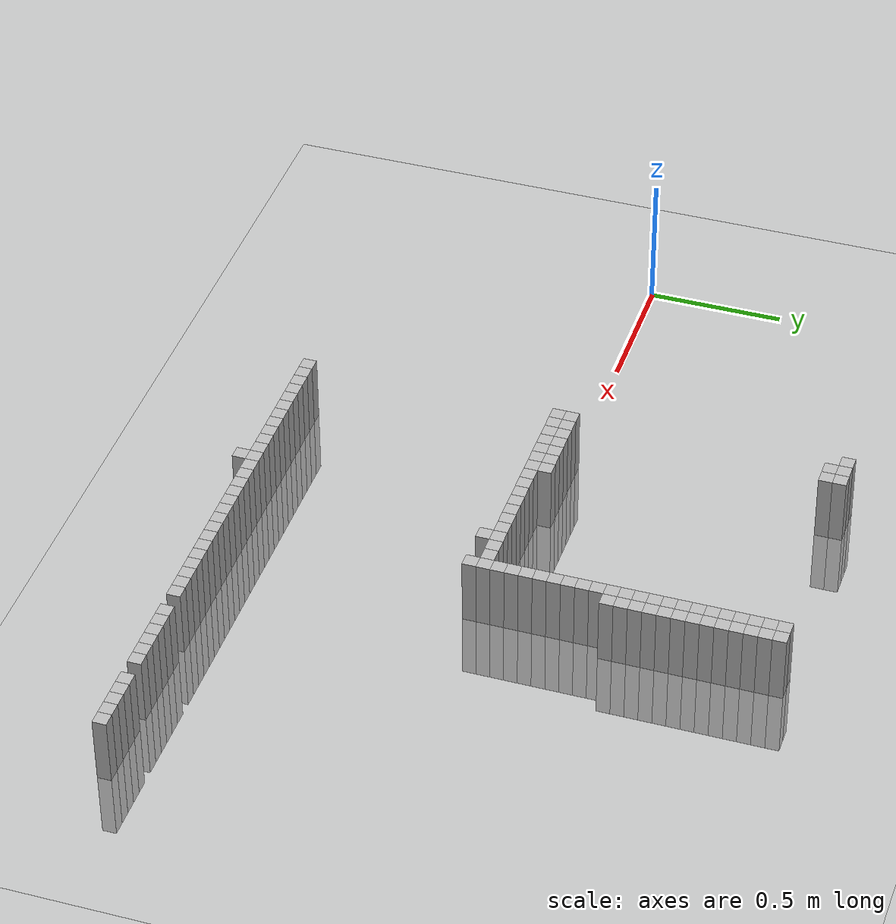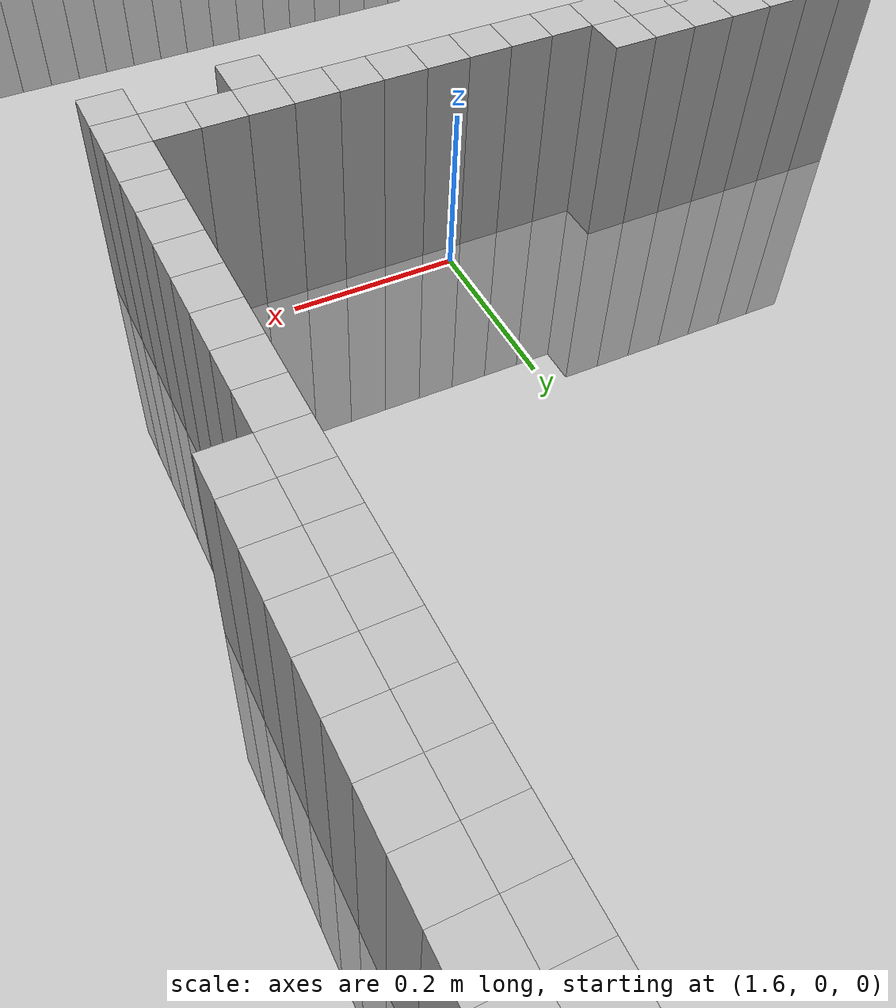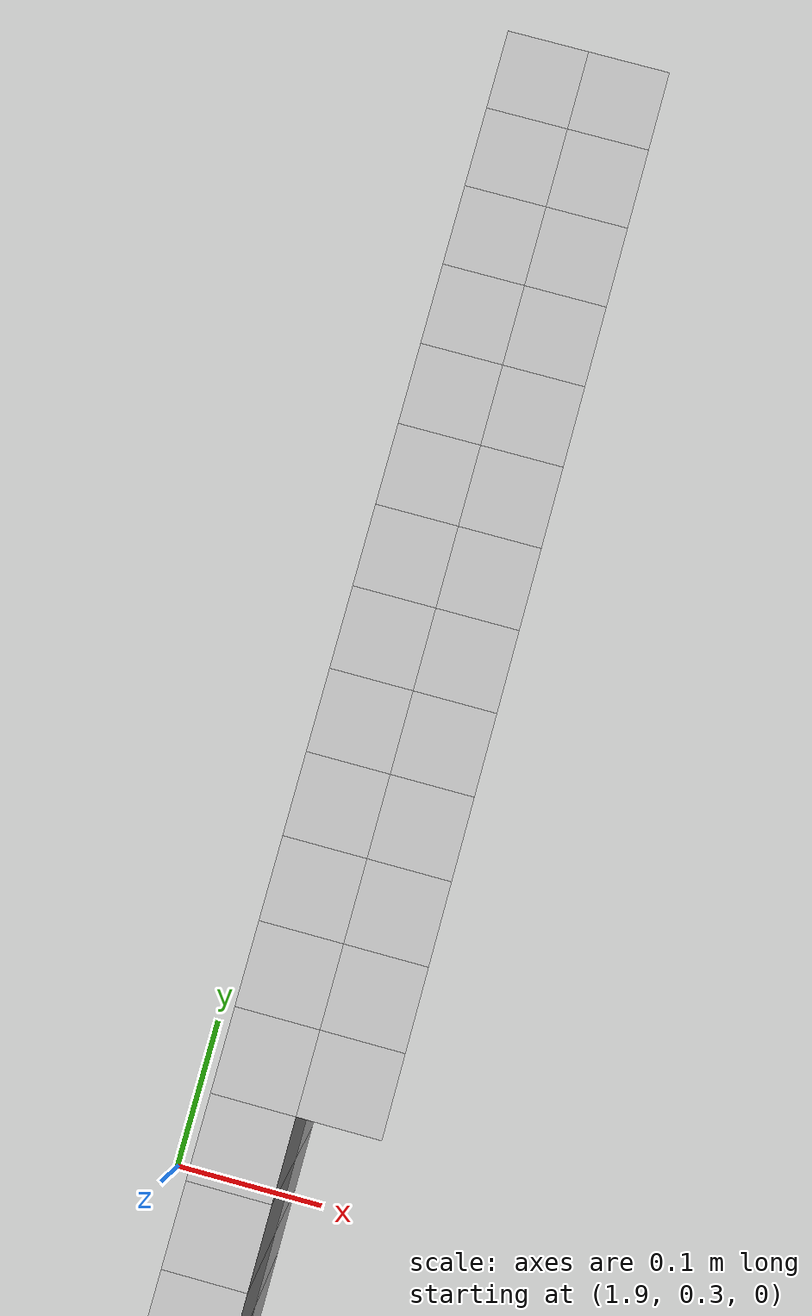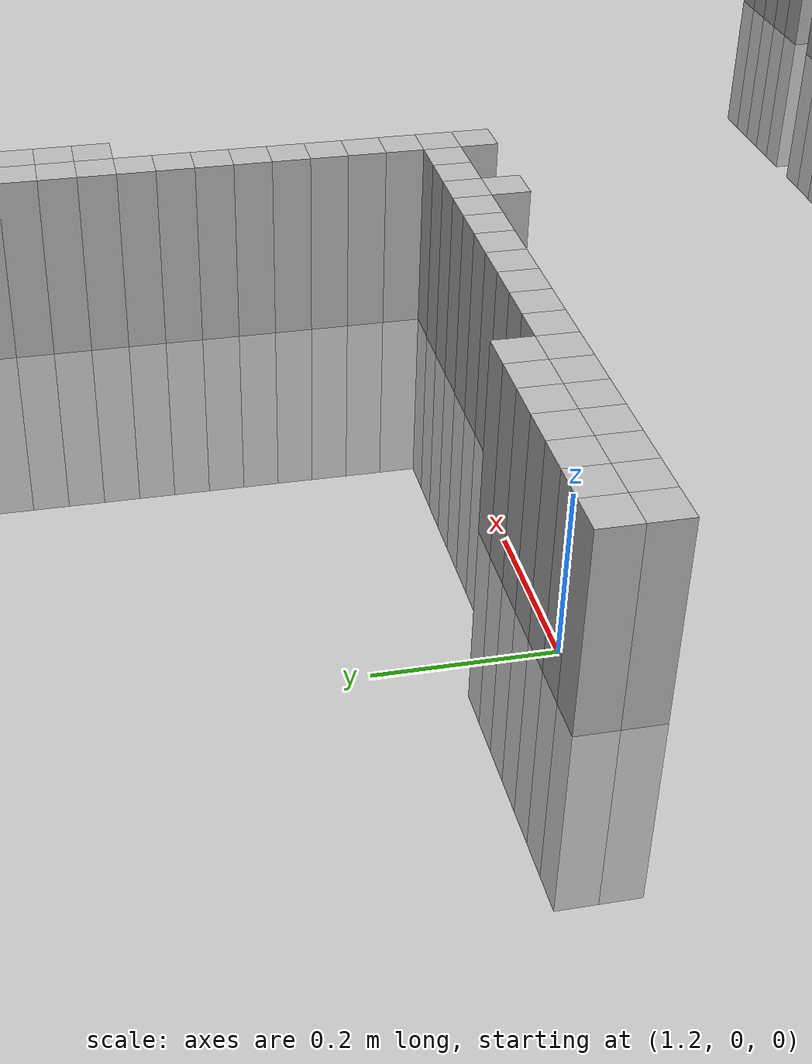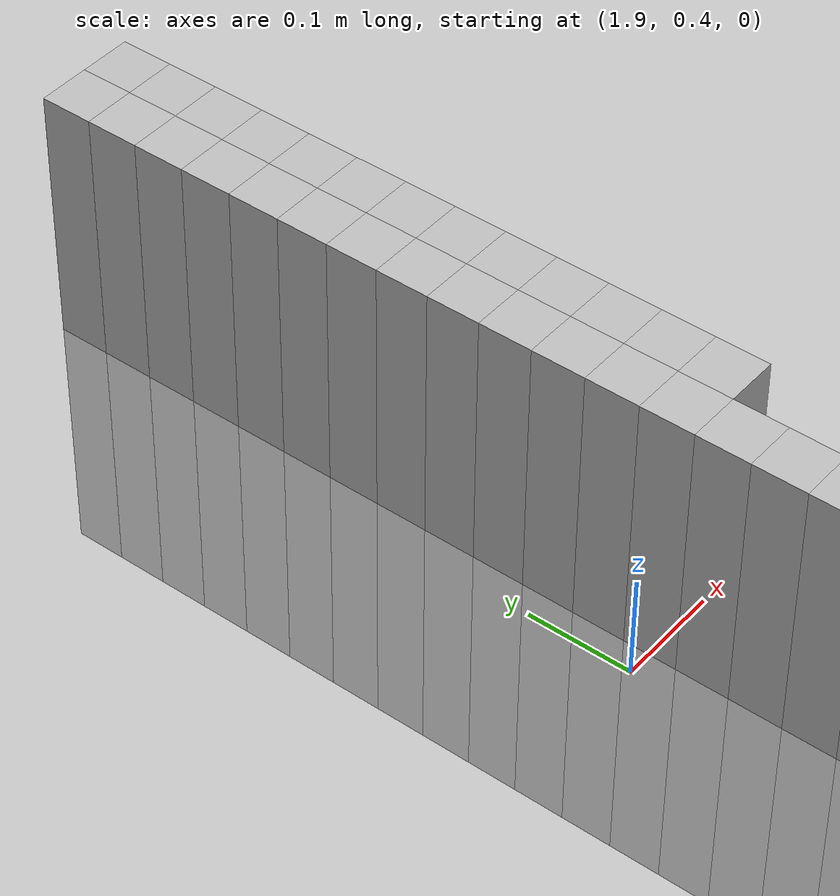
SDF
<sdf version="1.6">
 <world name="my_exploration_world">
  <include><uri>model://ground_plane</uri></include>
  <include><uri>model://sun</uri></include>
  <model name="obstacle_5">
   <pose>1.650000173598528 -1.0499998666346073 0 0 0 0</pose>
   <link name="link">
    <collision name="collision">
     <geometry><box><size>0.05000000074505806 0.05000000074505806 0.5</size></box></geometry>
    </collision>
    <visual name="visual">
     <geometry><box><size>0.05000000074505806 0.05000000074505806 0.5</size></box></geometry>
    </visual>
   </link>
   <static>true</static>
  </model>
  <model name="obstacle_47">
   <pose>1.1000001654028893 -0.9999998658895493 0 0 0 0</pose>
   <link name="link">
    <collision name="collision">
     <geometry><box><size>0.05000000074505806 0.05000000074505806 0.5</size></box></geometry>
    </collision>
    <visual name="visual">
     <geometry><box><size>0.05000000074505806 0.05000000074505806 0.5</size></box></geometry>
    </visual>
   </link>
   <static>true</static>
  </model>
  <model name="obstacle_48">
   <pose>1.1500001661479473 -0.9999998658895493 0 0 0 0</pose>
   <link name="link">
    <collision name="collision">
     <geometry><box><size>0.05000000074505806 0.05000000074505806 0.5</size></box></geometry>
    </collision>
    <visual name="visual">
     <geometry><box><size>0.05000000074505806 0.05000000074505806 0.5</size></box></geometry>
    </visual>
   </link>
   <static>true</static>
  </model>
  <model name="obstacle_49">
   <pose>1.2000001668930054 -0.9999998658895493 0 0 0 0</pose>
   <link name="link">
    <collision name="collision">
     <geometry><box><size>0.05000000074505806 0.05000000074505806 0.5</size></box></geometry>
    </collision>
    <visual name="visual">
     <geometry><box><size>0.05000000074505806 0.05000000074505806 0.5</size></box></geometry>
    </visual>
   </link>
   <static>true</static>
  </model>
  <model name="obstacle_50">
   <pose>1.2500001676380634 -0.9999998658895493 0 0 0 0</pose>
   <link name="link">
    <collision name="collision">
     <geometry><box><size>0.05000000074505806 0.05000000074505806 0.5</size></box></geometry>
    </collision>
    <visual name="visual">
     <geometry><box><size>0.05000000074505806 0.05000000074505806 0.5</size></box></geometry>
    </visual>
   </link>
   <static>true</static>
  </model>
  <model name="obstacle_51">
   <pose>1.3000001683831215 -0.9999998658895493 0 0 0 0</pose>
   <link name="link">
    <collision name="collision">
     <geometry><box><size>0.05000000074505806 0.05000000074505806 0.5</size></box></geometry>
    </collision>
    <visual name="visual">
     <geometry><box><size>0.05000000074505806 0.05000000074505806 0.5</size></box></geometry>
    </visual>
   </link>
   <static>true</static>
  </model>
  <model name="obstacle_52">
   <pose>1.3500001691281796 -0.9999998658895493 0 0 0 0</pose>
   <link name="link">
    <collision name="collision">
     <geometry><box><size>0.05000000074505806 0.05000000074505806 0.5</size></box></geometry>
    </collision>
    <visual name="visual">
     <geometry><box><size>0.05000000074505806 0.05000000074505806 0.5</size></box></geometry>
    </visual>
   </link>
   <static>true</static>
  </model>
  <model name="obstacle_53">
   <pose>1.4000001698732376 -0.9999998658895493 0 0 0 0</pose>
   <link name="link">
    <collision name="collision">
     <geometry><box><size>0.05000000074505806 0.05000000074505806 0.5</size></box></geometry>
    </collision>
    <visual name="visual">
     <geometry><box><size>0.05000000074505806 0.05000000074505806 0.5</size></box></geometry>
    </visual>
   </link>
   <static>true</static>
  </model>
  <model name="obstacle_54">
   <pose>1.4500001706182957 -0.9999998658895493 0 0 0 0</pose>
   <link name="link">
    <collision name="collision">
     <geometry><box><size>0.05000000074505806 0.05000000074505806 0.5</size></box></geometry>
    </collision>
    <visual name="visual">
     <geometry><box><size>0.05000000074505806 0.05000000074505806 0.5</size></box></geometry>
    </visual>
   </link>
   <static>true</static>
  </model>
  <model name="obstacle_55">
   <pose>1.5000001713633537 -0.9999998658895493 0 0 0 0</pose>
   <link name="link">
    <collision name="collision">
     <geometry><box><size>0.05000000074505806 0.05000000074505806 0.5</size></box></geometry>
    </collision>
    <visual name="visual">
     <geometry><box><size>0.05000000074505806 0.05000000074505806 0.5</size></box></geometry>
    </visual>
   </link>
   <static>true</static>
  </model>
  <model name="obstacle_56">
   <pose>1.5500001721084118 -0.9999998658895493 0 0 0 0</pose>
   <link name="link">
    <collision name="collision">
     <geometry><box><size>0.05000000074505806 0.05000000074505806 0.5</size></box></geometry>
    </collision>
    <visual name="visual">
     <geometry><box><size>0.05000000074505806 0.05000000074505806 0.5</size></box></geometry>
    </visual>
   </link>
   <static>true</static>
  </model>
  <model name="obstacle_57">
   <pose>1.6000001728534698 -0.9999998658895493 0 0 0 0</pose>
   <link name="link">
    <collision name="collision">
     <geometry><box><size>0.05000000074505806 0.05000000074505806 0.5</size></box></geometry>
    </collision>
    <visual name="visual">
     <geometry><box><size>0.05000000074505806 0.05000000074505806 0.5</size></box></geometry>
    </visual>
   </link>
   <static>true</static>
  </model>
  <model name="obstacle_58">
   <pose>1.650000173598528 -0.9999998658895493 0 0 0 0</pose>
   <link name="link">
    <collision name="collision">
     <geometry><box><size>0.05000000074505806 0.05000000074505806 0.5</size></box></geometry>
    </collision>
    <visual name="visual">
     <geometry><box><size>0.05000000074505806 0.05000000074505806 0.5</size></box></geometry>
    </visual>
   </link>
   <static>true</static>
  </model>
  <model name="obstacle_59">
   <pose>1.700000174343586 -0.9999998658895493 0 0 0 0</pose>
   <link name="link">
    <collision name="collision">
     <geometry><box><size>0.05000000074505806 0.05000000074505806 0.5</size></box></geometry>
    </collision>
    <visual name="visual">
     <geometry><box><size>0.05000000074505806 0.05000000074505806 0.5</size></box></geometry>
    </visual>
   </link>
   <static>true</static>
  </model>
  <model name="obstacle_60">
   <pose>1.750000175088644 -0.9999998658895493 0 0 0 0</pose>
   <link name="link">
    <collision name="collision">
     <geometry><box><size>0.05000000074505806 0.05000000074505806 0.5</size></box></geometry>
    </collision>
    <visual name="visual">
     <geometry><box><size>0.05000000074505806 0.05000000074505806 0.5</size></box></geometry>
    </visual>
   </link>
   <static>true</static>
  </model>
  <model name="obstacle_61">
   <pose>1.800000175833702 -0.9999998658895493 0 0 0 0</pose>
   <link name="link">
    <collision name="collision">
     <geometry><box><size>0.05000000074505806 0.05000000074505806 0.5</size></box></geometry>
    </collision>
    <visual name="visual">
     <geometry><box><size>0.05000000074505806 0.05000000074505806 0.5</size></box></geometry>
    </visual>
   </link>
   <static>true</static>
  </model>
  <model name="obstacle_62">
   <pose>1.8500001765787601 -0.9999998658895493 0 0 0 0</pose>
   <link name="link">
    <collision name="collision">
     <geometry><box><size>0.05000000074505806 0.05000000074505806 0.5</size></box></geometry>
    </collision>
    <visual name="visual">
     <geometry><box><size>0.05000000074505806 0.05000000074505806 0.5</size></box></geometry>
    </visual>
   </link>
   <static>true</static>
  </model>
  <model name="obstacle_63">
   <pose>1.9000001773238182 -0.9999998658895493 0 0 0 0</pose>
   <link name="link">
    <collision name="collision">
     <geometry><box><size>0.05000000074505806 0.05000000074505806 0.5</size></box></geometry>
    </collision>
    <visual name="visual">
     <geometry><box><size>0.05000000074505806 0.05000000074505806 0.5</size></box></geometry>
    </visual>
   </link>
   <static>true</static>
  </model>
  <model name="obstacle_64">
   <pose>1.9500001780688763 -0.9999998658895493 0 0 0 0</pose>
   <link name="link">
    <collision name="collision">
     <geometry><box><size>0.05000000074505806 0.05000000074505806 0.5</size></box></geometry>
    </collision>
    <visual name="visual">
     <geometry><box><size>0.05000000074505806 0.05000000074505806 0.5</size></box></geometry>
    </visual>
   </link>
   <static>true</static>
  </model>
  <model name="obstacle_65">
   <pose>2.0000001788139343 -0.9999998658895493 0 0 0 0</pose>
   <link name="link">
    <collision name="collision">
     <geometry><box><size>0.05000000074505806 0.05000000074505806 0.5</size></box></geometry>
    </collision>
    <visual name="visual">
     <geometry><box><size>0.05000000074505806 0.05000000074505806 0.5</size></box></geometry>
    </visual>
   </link>
   <static>true</static>
  </model>
  <model name="obstacle_66">
   <pose>2.0500001795589924 -0.9999998658895493 0 0 0 0</pose>
   <link name="link">
    <collision name="collision">
     <geometry><box><size>0.05000000074505806 0.05000000074505806 0.5</size></box></geometry>
    </collision>
    <visual name="visual">
     <geometry><box><size>0.05000000074505806 0.05000000074505806 0.5</size></box></geometry>
    </visual>
   </link>
   <static>true</static>
  </model>
  <model name="obstacle_67">
   <pose>2.1000001803040504 -0.9999998658895493 0 0 0 0</pose>
   <link name="link">
    <collision name="collision">
     <geometry><box><size>0.05000000074505806 0.05000000074505806 0.5</size></box></geometry>
    </collision>
    <visual name="visual">
     <geometry><box><size>0.05000000074505806 0.05000000074505806 0.5</size></box></geometry>
    </visual>
   </link>
   <static>true</static>
  </model>
  <model name="obstacle_68">
   <pose>2.1500001810491085 -0.9999998658895493 0 0 0 0</pose>
   <link name="link">
    <collision name="collision">
     <geometry><box><size>0.05000000074505806 0.05000000074505806 0.5</size></box></geometry>
    </collision>
    <visual name="visual">
     <geometry><box><size>0.05000000074505806 0.05000000074505806 0.5</size></box></geometry>
    </visual>
   </link>
   <static>true</static>
  </model>
  <model name="obstacle_69">
   <pose>2.2000001817941666 -0.9999998658895493 0 0 0 0</pose>
   <link name="link">
    <collision name="collision">
     <geometry><box><size>0.05000000074505806 0.05000000074505806 0.5</size></box></geometry>
    </collision>
    <visual name="visual">
     <geometry><box><size>0.05000000074505806 0.05000000074505806 0.5</size></box></geometry>
    </visual>
   </link>
   <static>true</static>
  </model>
  <model name="obstacle_70">
   <pose>2.2500001825392246 -0.9999998658895493 0 0 0 0</pose>
   <link name="link">
    <collision name="collision">
     <geometry><box><size>0.05000000074505806 0.05000000074505806 0.5</size></box></geometry>
    </collision>
    <visual name="visual">
     <geometry><box><size>0.05000000074505806 0.05000000074505806 0.5</size></box></geometry>
    </visual>
   </link>
   <static>true</static>
  </model>
  <model name="obstacle_71">
   <pose>2.3000001832842827 -0.9999998658895493 0 0 0 0</pose>
   <link name="link">
    <collision name="collision">
     <geometry><box><size>0.05000000074505806 0.05000000074505806 0.5</size></box></geometry>
    </collision>
    <visual name="visual">
     <geometry><box><size>0.05000000074505806 0.05000000074505806 0.5</size></box></geometry>
    </visual>
   </link>
   <static>true</static>
  </model>
  <model name="obstacle_72">
   <pose>2.3500001840293407 -0.9999998658895493 0 0 0 0</pose>
   <link name="link">
    <collision name="collision">
     <geometry><box><size>0.05000000074505806 0.05000000074505806 0.5</size></box></geometry>
    </collision>
    <visual name="visual">
     <geometry><box><size>0.05000000074505806 0.05000000074505806 0.5</size></box></geometry>
    </visual>
   </link>
   <static>true</static>
  </model>
  <model name="obstacle_73">
   <pose>2.400000184774399 -0.9999998658895493 0 0 0 0</pose>
   <link name="link">
    <collision name="collision">
     <geometry><box><size>0.05000000074505806 0.05000000074505806 0.5</size></box></geometry>
    </collision>
    <visual name="visual">
     <geometry><box><size>0.05000000074505806 0.05000000074505806 0.5</size></box></geometry>
    </visual>
   </link>
   <static>true</static>
  </model>
  <model name="obstacle_74">
   <pose>2.500000186264515 -0.9999998658895493 0 0 0 0</pose>
   <link name="link">
    <collision name="collision">
     <geometry><box><size>0.05000000074505806 0.05000000074505806 0.5</size></box></geometry>
    </collision>
    <visual name="visual">
     <geometry><box><size>0.05000000074505806 0.05000000074505806 0.5</size></box></geometry>
    </visual>
   </link>
   <static>true</static>
  </model>
  <model name="obstacle_75">
   <pose>2.550000187009573 -0.9999998658895493 0 0 0 0</pose>
   <link name="link">
    <collision name="collision">
     <geometry><box><size>0.05000000074505806 0.05000000074505806 0.5</size></box></geometry>
    </collision>
    <visual name="visual">
     <geometry><box><size>0.05000000074505806 0.05000000074505806 0.5</size></box></geometry>
    </visual>
   </link>
   <static>true</static>
  </model>
  <model name="obstacle_76">
   <pose>2.600000187754631 -0.9999998658895493 0 0 0 0</pose>
   <link name="link">
    <collision name="collision">
     <geometry><box><size>0.05000000074505806 0.05000000074505806 0.5</size></box></geometry>
    </collision>
    <visual name="visual">
     <geometry><box><size>0.05000000074505806 0.05000000074505806 0.5</size></box></geometry>
    </visual>
   </link>
   <static>true</static>
  </model>
  <model name="obstacle_77">
   <pose>2.650000188499689 -0.9999998658895493 0 0 0 0</pose>
   <link name="link">
    <collision name="collision">
     <geometry><box><size>0.05000000074505806 0.05000000074505806 0.5</size></box></geometry>
    </collision>
    <visual name="visual">
     <geometry><box><size>0.05000000074505806 0.05000000074505806 0.5</size></box></geometry>
    </visual>
   </link>
   <static>true</static>
  </model>
  <model name="obstacle_78">
   <pose>2.700000189244747 -0.9999998658895493 0 0 0 0</pose>
   <link name="link">
    <collision name="collision">
     <geometry><box><size>0.05000000074505806 0.05000000074505806 0.5</size></box></geometry>
    </collision>
    <visual name="visual">
     <geometry><box><size>0.05000000074505806 0.05000000074505806 0.5</size></box></geometry>
    </visual>
   </link>
   <static>true</static>
  </model>
  <model name="obstacle_79">
   <pose>2.750000189989805 -0.9999998658895493 0 0 0 0</pose>
   <link name="link">
    <collision name="collision">
     <geometry><box><size>0.05000000074505806 0.05000000074505806 0.5</size></box></geometry>
    </collision>
    <visual name="visual">
     <geometry><box><size>0.05000000074505806 0.05000000074505806 0.5</size></box></geometry>
    </visual>
   </link>
   <static>true</static>
  </model>
  <model name="obstacle_80">
   <pose>2.8500001914799213 -0.9999998658895493 0 0 0 0</pose>
   <link name="link">
    <collision name="collision">
     <geometry><box><size>0.05000000074505806 0.05000000074505806 0.5</size></box></geometry>
    </collision>
    <visual name="visual">
     <geometry><box><size>0.05000000074505806 0.05000000074505806 0.5</size></box></geometry>
    </visual>
   </link>
   <static>true</static>
  </model>
  <model name="obstacle_81">
   <pose>2.9000001922249794 -0.9999998658895493 0 0 0 0</pose>
   <link name="link">
    <collision name="collision">
     <geometry><box><size>0.05000000074505806 0.05000000074505806 0.5</size></box></geometry>
    </collision>
    <visual name="visual">
     <geometry><box><size>0.05000000074505806 0.05000000074505806 0.5</size></box></geometry>
    </visual>
   </link>
   <static>true</static>
  </model>
  <model name="obstacle_82">
   <pose>2.9500001929700375 -0.9999998658895493 0 0 0 0</pose>
   <link name="link">
    <collision name="collision">
     <geometry><box><size>0.05000000074505806 0.05000000074505806 0.5</size></box></geometry>
    </collision>
    <visual name="visual">
     <geometry><box><size>0.05000000074505806 0.05000000074505806 0.5</size></box></geometry>
    </visual>
   </link>
   <static>true</static>
  </model>
  <model name="obstacle_83">
   <pose>3.0000001937150955 -0.9999998658895493 0 0 0 0</pose>
   <link name="link">
    <collision name="collision">
     <geometry><box><size>0.05000000074505806 0.05000000074505806 0.5</size></box></geometry>
    </collision>
    <visual name="visual">
     <geometry><box><size>0.05000000074505806 0.05000000074505806 0.5</size></box></geometry>
    </visual>
   </link>
   <static>true</static>
  </model>
  <model name="obstacle_84">
   <pose>3.0500001944601536 -0.9999998658895493 0 0 0 0</pose>
   <link name="link">
    <collision name="collision">
     <geometry><box><size>0.05000000074505806 0.05000000074505806 0.5</size></box></geometry>
    </collision>
    <visual name="visual">
     <geometry><box><size>0.05000000074505806 0.05000000074505806 0.5</size></box></geometry>
    </visual>
   </link>
   <static>true</static>
  </model>
  <model name="obstacle_128">
   <pose>1.800000175833702 -0.09999985247850418 0 0 0 0</pose>
   <link name="link">
    <collision name="collision">
     <geometry><box><size>0.05000000074505806 0.05000000074505806 0.5</size></box></geometry>
    </collision>
    <visual name="visual">
     <geometry><box><size>0.05000000074505806 0.05000000074505806 0.5</size></box></geometry>
    </visual>
   </link>
   <static>true</static>
  </model>
  <model name="obstacle_129">
   <pose>1.9500001780688763 -0.09999985247850418 0 0 0 0</pose>
   <link name="link">
    <collision name="collision">
     <geometry><box><size>0.05000000074505806 0.05000000074505806 0.5</size></box></geometry>
    </collision>
    <visual name="visual">
     <geometry><box><size>0.05000000074505806 0.05000000074505806 0.5</size></box></geometry>
    </visual>
   </link>
   <static>true</static>
  </model>
  <model name="obstacle_134">
   <pose>1.1000001654028893 -0.04999985173344612 0 0 0 0</pose>
   <link name="link">
    <collision name="collision">
     <geometry><box><size>0.05000000074505806 0.05000000074505806 0.5</size></box></geometry>
    </collision>
    <visual name="visual">
     <geometry><box><size>0.05000000074505806 0.05000000074505806 0.5</size></box></geometry>
    </visual>
   </link>
   <static>true</static>
  </model>
  <model name="obstacle_135">
   <pose>1.1500001661479473 -0.04999985173344612 0 0 0 0</pose>
   <link name="link">
    <collision name="collision">
     <geometry><box><size>0.05000000074505806 0.05000000074505806 0.5</size></box></geometry>
    </collision>
    <visual name="visual">
     <geometry><box><size>0.05000000074505806 0.05000000074505806 0.5</size></box></geometry>
    </visual>
   </link>
   <static>true</static>
  </model>
  <model name="obstacle_136">
   <pose>1.2000001668930054 -0.04999985173344612 0 0 0 0</pose>
   <link name="link">
    <collision name="collision">
     <geometry><box><size>0.05000000074505806 0.05000000074505806 0.5</size></box></geometry>
    </collision>
    <visual name="visual">
     <geometry><box><size>0.05000000074505806 0.05000000074505806 0.5</size></box></geometry>
    </visual>
   </link>
   <static>true</static>
  </model>
  <model name="obstacle_137">
   <pose>1.2500001676380634 -0.04999985173344612 0 0 0 0</pose>
   <link name="link">
    <collision name="collision">
     <geometry><box><size>0.05000000074505806 0.05000000074505806 0.5</size></box></geometry>
    </collision>
    <visual name="visual">
     <geometry><box><size>0.05000000074505806 0.05000000074505806 0.5</size></box></geometry>
    </visual>
   </link>
   <static>true</static>
  </model>
  <model name="obstacle_138">
   <pose>1.3000001683831215 -0.04999985173344612 0 0 0 0</pose>
   <link name="link">
    <collision name="collision">
     <geometry><box><size>0.05000000074505806 0.05000000074505806 0.5</size></box></geometry>
    </collision>
    <visual name="visual">
     <geometry><box><size>0.05000000074505806 0.05000000074505806 0.5</size></box></geometry>
    </visual>
   </link>
   <static>true</static>
  </model>
  <model name="obstacle_139">
   <pose>1.3500001691281796 -0.04999985173344612 0 0 0 0</pose>
   <link name="link">
    <collision name="collision">
     <geometry><box><size>0.05000000074505806 0.05000000074505806 0.5</size></box></geometry>
    </collision>
    <visual name="visual">
     <geometry><box><size>0.05000000074505806 0.05000000074505806 0.5</size></box></geometry>
    </visual>
   </link>
   <static>true</static>
  </model>
  <model name="obstacle_140">
   <pose>1.4000001698732376 -0.04999985173344612 0 0 0 0</pose>
   <link name="link">
    <collision name="collision">
     <geometry><box><size>0.05000000074505806 0.05000000074505806 0.5</size></box></geometry>
    </collision>
    <visual name="visual">
     <geometry><box><size>0.05000000074505806 0.05000000074505806 0.5</size></box></geometry>
    </visual>
   </link>
   <static>true</static>
  </model>
  <model name="obstacle_141">
   <pose>1.4500001706182957 -0.04999985173344612 0 0 0 0</pose>
   <link name="link">
    <collision name="collision">
     <geometry><box><size>0.05000000074505806 0.05000000074505806 0.5</size></box></geometry>
    </collision>
    <visual name="visual">
     <geometry><box><size>0.05000000074505806 0.05000000074505806 0.5</size></box></geometry>
    </visual>
   </link>
   <static>true</static>
  </model>
  <model name="obstacle_142">
   <pose>1.5000001713633537 -0.04999985173344612 0 0 0 0</pose>
   <link name="link">
    <collision name="collision">
     <geometry><box><size>0.05000000074505806 0.05000000074505806 0.5</size></box></geometry>
    </collision>
    <visual name="visual">
     <geometry><box><size>0.05000000074505806 0.05000000074505806 0.5</size></box></geometry>
    </visual>
   </link>
   <static>true</static>
  </model>
  <model name="obstacle_143">
   <pose>1.5500001721084118 -0.04999985173344612 0 0 0 0</pose>
   <link name="link">
    <collision name="collision">
     <geometry><box><size>0.05000000074505806 0.05000000074505806 0.5</size></box></geometry>
    </collision>
    <visual name="visual">
     <geometry><box><size>0.05000000074505806 0.05000000074505806 0.5</size></box></geometry>
    </visual>
   </link>
   <static>true</static>
  </model>
  <model name="obstacle_144">
   <pose>1.6000001728534698 -0.04999985173344612 0 0 0 0</pose>
   <link name="link">
    <collision name="collision">
     <geometry><box><size>0.05000000074505806 0.05000000074505806 0.5</size></box></geometry>
    </collision>
    <visual name="visual">
     <geometry><box><size>0.05000000074505806 0.05000000074505806 0.5</size></box></geometry>
    </visual>
   </link>
   <static>true</static>
  </model>
  <model name="obstacle_145">
   <pose>1.650000173598528 -0.04999985173344612 0 0 0 0</pose>
   <link name="link">
    <collision name="collision">
     <geometry><box><size>0.05000000074505806 0.05000000074505806 0.5</size></box></geometry>
    </collision>
    <visual name="visual">
     <geometry><box><size>0.05000000074505806 0.05000000074505806 0.5</size></box></geometry>
    </visual>
   </link>
   <static>true</static>
  </model>
  <model name="obstacle_146">
   <pose>1.700000174343586 -0.04999985173344612 0 0 0 0</pose>
   <link name="link">
    <collision name="collision">
     <geometry><box><size>0.05000000074505806 0.05000000074505806 0.5</size></box></geometry>
    </collision>
    <visual name="visual">
     <geometry><box><size>0.05000000074505806 0.05000000074505806 0.5</size></box></geometry>
    </visual>
   </link>
   <static>true</static>
  </model>
  <model name="obstacle_147">
   <pose>1.750000175088644 -0.04999985173344612 0 0 0 0</pose>
   <link name="link">
    <collision name="collision">
     <geometry><box><size>0.05000000074505806 0.05000000074505806 0.5</size></box></geometry>
    </collision>
    <visual name="visual">
     <geometry><box><size>0.05000000074505806 0.05000000074505806 0.5</size></box></geometry>
    </visual>
   </link>
   <static>true</static>
  </model>
  <model name="obstacle_148">
   <pose>1.800000175833702 -0.04999985173344612 0 0 0 0</pose>
   <link name="link">
    <collision name="collision">
     <geometry><box><size>0.05000000074505806 0.05000000074505806 0.5</size></box></geometry>
    </collision>
    <visual name="visual">
     <geometry><box><size>0.05000000074505806 0.05000000074505806 0.5</size></box></geometry>
    </visual>
   </link>
   <static>true</static>
  </model>
  <model name="obstacle_149">
   <pose>1.8500001765787601 -0.04999985173344612 0 0 0 0</pose>
   <link name="link">
    <collision name="collision">
     <geometry><box><size>0.05000000074505806 0.05000000074505806 0.5</size></box></geometry>
    </collision>
    <visual name="visual">
     <geometry><box><size>0.05000000074505806 0.05000000074505806 0.5</size></box></geometry>
    </visual>
   </link>
   <static>true</static>
  </model>
  <model name="obstacle_150">
   <pose>1.9000001773238182 -0.04999985173344612 0 0 0 0</pose>
   <link name="link">
    <collision name="collision">
     <geometry><box><size>0.05000000074505806 0.05000000074505806 0.5</size></box></geometry>
    </collision>
    <visual name="visual">
     <geometry><box><size>0.05000000074505806 0.05000000074505806 0.5</size></box></geometry>
    </visual>
   </link>
   <static>true</static>
  </model>
  <model name="obstacle_151">
   <pose>1.9500001780688763 -0.04999985173344612 0 0 0 0</pose>
   <link name="link">
    <collision name="collision">
     <geometry><box><size>0.05000000074505806 0.05000000074505806 0.5</size></box></geometry>
    </collision>
    <visual name="visual">
     <geometry><box><size>0.05000000074505806 0.05000000074505806 0.5</size></box></geometry>
    </visual>
   </link>
   <static>true</static>
  </model>
  <model name="obstacle_156">
   <pose>1.1000001654028893 1.4901161193847656e-07 0 0 0 0</pose>
   <link name="link">
    <collision name="collision">
     <geometry><box><size>0.05000000074505806 0.05000000074505806 0.5</size></box></geometry>
    </collision>
    <visual name="visual">
     <geometry><box><size>0.05000000074505806 0.05000000074505806 0.5</size></box></geometry>
    </visual>
   </link>
   <static>true</static>
  </model>
  <model name="obstacle_157">
   <pose>1.1500001661479473 1.4901161193847656e-07 0 0 0 0</pose>
   <link name="link">
    <collision name="collision">
     <geometry><box><size>0.05000000074505806 0.05000000074505806 0.5</size></box></geometry>
    </collision>
    <visual name="visual">
     <geometry><box><size>0.05000000074505806 0.05000000074505806 0.5</size></box></geometry>
    </visual>
   </link>
   <static>true</static>
  </model>
  <model name="obstacle_158">
   <pose>1.2000001668930054 1.4901161193847656e-07 0 0 0 0</pose>
   <link name="link">
    <collision name="collision">
     <geometry><box><size>0.05000000074505806 0.05000000074505806 0.5</size></box></geometry>
    </collision>
    <visual name="visual">
     <geometry><box><size>0.05000000074505806 0.05000000074505806 0.5</size></box></geometry>
    </visual>
   </link>
   <static>true</static>
  </model>
  <model name="obstacle_159">
   <pose>1.2500001676380634 1.4901161193847656e-07 0 0 0 0</pose>
   <link name="link">
    <collision name="collision">
     <geometry><box><size>0.05000000074505806 0.05000000074505806 0.5</size></box></geometry>
    </collision>
    <visual name="visual">
     <geometry><box><size>0.05000000074505806 0.05000000074505806 0.5</size></box></geometry>
    </visual>
   </link>
   <static>true</static>
  </model>
  <model name="obstacle_160">
   <pose>1.3000001683831215 1.4901161193847656e-07 0 0 0 0</pose>
   <link name="link">
    <collision name="collision">
     <geometry><box><size>0.05000000074505806 0.05000000074505806 0.5</size></box></geometry>
    </collision>
    <visual name="visual">
     <geometry><box><size>0.05000000074505806 0.05000000074505806 0.5</size></box></geometry>
    </visual>
   </link>
   <static>true</static>
  </model>
  <model name="obstacle_161">
   <pose>1.3500001691281796 1.4901161193847656e-07 0 0 0 0</pose>
   <link name="link">
    <collision name="collision">
     <geometry><box><size>0.05000000074505806 0.05000000074505806 0.5</size></box></geometry>
    </collision>
    <visual name="visual">
     <geometry><box><size>0.05000000074505806 0.05000000074505806 0.5</size></box></geometry>
    </visual>
   </link>
   <static>true</static>
  </model>
  <model name="obstacle_162">
   <pose>1.4000001698732376 1.4901161193847656e-07 0 0 0 0</pose>
   <link name="link">
    <collision name="collision">
     <geometry><box><size>0.05000000074505806 0.05000000074505806 0.5</size></box></geometry>
    </collision>
    <visual name="visual">
     <geometry><box><size>0.05000000074505806 0.05000000074505806 0.5</size></box></geometry>
    </visual>
   </link>
   <static>true</static>
  </model>
  <model name="obstacle_163">
   <pose>1.9500001780688763 1.4901161193847656e-07 0 0 0 0</pose>
   <link name="link">
    <collision name="collision">
     <geometry><box><size>0.05000000074505806 0.05000000074505806 0.5</size></box></geometry>
    </collision>
    <visual name="visual">
     <geometry><box><size>0.05000000074505806 0.05000000074505806 0.5</size></box></geometry>
    </visual>
   </link>
   <static>true</static>
  </model>
  <model name="obstacle_166">
   <pose>1.9500001780688763 0.05000014975667 0 0 0 0</pose>
   <link name="link">
    <collision name="collision">
     <geometry><box><size>0.05000000074505806 0.05000000074505806 0.5</size></box></geometry>
    </collision>
    <visual name="visual">
     <geometry><box><size>0.05000000074505806 0.05000000074505806 0.5</size></box></geometry>
    </visual>
   </link>
   <static>true</static>
  </model>
  <model name="obstacle_169">
   <pose>1.9500001780688763 0.10000015050172806 0 0 0 0</pose>
   <link name="link">
    <collision name="collision">
     <geometry><box><size>0.05000000074505806 0.05000000074505806 0.5</size></box></geometry>
    </collision>
    <visual name="visual">
     <geometry><box><size>0.05000000074505806 0.05000000074505806 0.5</size></box></geometry>
    </visual>
   </link>
   <static>true</static>
  </model>
  <model name="obstacle_172">
   <pose>1.9500001780688763 0.15000015124678612 0 0 0 0</pose>
   <link name="link">
    <collision name="collision">
     <geometry><box><size>0.05000000074505806 0.05000000074505806 0.5</size></box></geometry>
    </collision>
    <visual name="visual">
     <geometry><box><size>0.05000000074505806 0.05000000074505806 0.5</size></box></geometry>
    </visual>
   </link>
   <static>true</static>
  </model>
  <model name="obstacle_175">
   <pose>1.9500001780688763 0.20000015199184418 0 0 0 0</pose>
   <link name="link">
    <collision name="collision">
     <geometry><box><size>0.05000000074505806 0.05000000074505806 0.5</size></box></geometry>
    </collision>
    <visual name="visual">
     <geometry><box><size>0.05000000074505806 0.05000000074505806 0.5</size></box></geometry>
    </visual>
   </link>
   <static>true</static>
  </model>
  <model name="obstacle_178">
   <pose>1.9500001780688763 0.25000015273690224 0 0 0 0</pose>
   <link name="link">
    <collision name="collision">
     <geometry><box><size>0.05000000074505806 0.05000000074505806 0.5</size></box></geometry>
    </collision>
    <visual name="visual">
     <geometry><box><size>0.05000000074505806 0.05000000074505806 0.5</size></box></geometry>
    </visual>
   </link>
   <static>true</static>
  </model>
  <model name="obstacle_181">
   <pose>1.9500001780688763 0.3000001534819603 0 0 0 0</pose>
   <link name="link">
    <collision name="collision">
     <geometry><box><size>0.05000000074505806 0.05000000074505806 0.5</size></box></geometry>
    </collision>
    <visual name="visual">
     <geometry><box><size>0.05000000074505806 0.05000000074505806 0.5</size></box></geometry>
    </visual>
   </link>
   <static>true</static>
  </model>
  <model name="obstacle_184">
   <pose>1.9500001780688763 0.35000015422701836 0 0 0 0</pose>
   <link name="link">
    <collision name="collision">
     <geometry><box><size>0.05000000074505806 0.05000000074505806 0.5</size></box></geometry>
    </collision>
    <visual name="visual">
     <geometry><box><size>0.05000000074505806 0.05000000074505806 0.5</size></box></geometry>
    </visual>
   </link>
   <static>true</static>
  </model>
  <model name="obstacle_187">
   <pose>1.9500001780688763 0.4000001549720764 0 0 0 0</pose>
   <link name="link">
    <collision name="collision">
     <geometry><box><size>0.05000000074505806 0.05000000074505806 0.5</size></box></geometry>
    </collision>
    <visual name="visual">
     <geometry><box><size>0.05000000074505806 0.05000000074505806 0.5</size></box></geometry>
    </visual>
   </link>
   <static>true</static>
  </model>
  <model name="obstacle_188">
   <pose>2.0000001788139343 0.4000001549720764 0 0 0 0</pose>
   <link name="link">
    <collision name="collision">
     <geometry><box><size>0.05000000074505806 0.05000000074505806 0.5</size></box></geometry>
    </collision>
    <visual name="visual">
     <geometry><box><size>0.05000000074505806 0.05000000074505806 0.5</size></box></geometry>
    </visual>
   </link>
   <static>true</static>
  </model>
  <model name="obstacle_191">
   <pose>1.9500001780688763 0.4500001557171345 0 0 0 0</pose>
   <link name="link">
    <collision name="collision">
     <geometry><box><size>0.05000000074505806 0.05000000074505806 0.5</size></box></geometry>
    </collision>
    <visual name="visual">
     <geometry><box><size>0.05000000074505806 0.05000000074505806 0.5</size></box></geometry>
    </visual>
   </link>
   <static>true</static>
  </model>
  <model name="obstacle_192">
   <pose>2.0000001788139343 0.4500001557171345 0 0 0 0</pose>
   <link name="link">
    <collision name="collision">
     <geometry><box><size>0.05000000074505806 0.05000000074505806 0.5</size></box></geometry>
    </collision>
    <visual name="visual">
     <geometry><box><size>0.05000000074505806 0.05000000074505806 0.5</size></box></geometry>
    </visual>
   </link>
   <static>true</static>
  </model>
  <model name="obstacle_195">
   <pose>1.9500001780688763 0.5000001564621925 0 0 0 0</pose>
   <link name="link">
    <collision name="collision">
     <geometry><box><size>0.05000000074505806 0.05000000074505806 0.5</size></box></geometry>
    </collision>
    <visual name="visual">
     <geometry><box><size>0.05000000074505806 0.05000000074505806 0.5</size></box></geometry>
    </visual>
   </link>
   <static>true</static>
  </model>
  <model name="obstacle_196">
   <pose>2.0000001788139343 0.5000001564621925 0 0 0 0</pose>
   <link name="link">
    <collision name="collision">
     <geometry><box><size>0.05000000074505806 0.05000000074505806 0.5</size></box></geometry>
    </collision>
    <visual name="visual">
     <geometry><box><size>0.05000000074505806 0.05000000074505806 0.5</size></box></geometry>
    </visual>
   </link>
   <static>true</static>
  </model>
  <model name="obstacle_199">
   <pose>1.9500001780688763 0.5500001572072506 0 0 0 0</pose>
   <link name="link">
    <collision name="collision">
     <geometry><box><size>0.05000000074505806 0.05000000074505806 0.5</size></box></geometry>
    </collision>
    <visual name="visual">
     <geometry><box><size>0.05000000074505806 0.05000000074505806 0.5</size></box></geometry>
    </visual>
   </link>
   <static>true</static>
  </model>
  <model name="obstacle_200">
   <pose>2.0000001788139343 0.5500001572072506 0 0 0 0</pose>
   <link name="link">
    <collision name="collision">
     <geometry><box><size>0.05000000074505806 0.05000000074505806 0.5</size></box></geometry>
    </collision>
    <visual name="visual">
     <geometry><box><size>0.05000000074505806 0.05000000074505806 0.5</size></box></geometry>
    </visual>
   </link>
   <static>true</static>
  </model>
  <model name="obstacle_203">
   <pose>1.9500001780688763 0.6000001579523087 0 0 0 0</pose>
   <link name="link">
    <collision name="collision">
     <geometry><box><size>0.05000000074505806 0.05000000074505806 0.5</size></box></geometry>
    </collision>
    <visual name="visual">
     <geometry><box><size>0.05000000074505806 0.05000000074505806 0.5</size></box></geometry>
    </visual>
   </link>
   <static>true</static>
  </model>
  <model name="obstacle_204">
   <pose>2.0000001788139343 0.6000001579523087 0 0 0 0</pose>
   <link name="link">
    <collision name="collision">
     <geometry><box><size>0.05000000074505806 0.05000000074505806 0.5</size></box></geometry>
    </collision>
    <visual name="visual">
     <geometry><box><size>0.05000000074505806 0.05000000074505806 0.5</size></box></geometry>
    </visual>
   </link>
   <static>true</static>
  </model>
  <model name="obstacle_207">
   <pose>1.9500001780688763 0.6500001586973667 0 0 0 0</pose>
   <link name="link">
    <collision name="collision">
     <geometry><box><size>0.05000000074505806 0.05000000074505806 0.5</size></box></geometry>
    </collision>
    <visual name="visual">
     <geometry><box><size>0.05000000074505806 0.05000000074505806 0.5</size></box></geometry>
    </visual>
   </link>
   <static>true</static>
  </model>
  <model name="obstacle_208">
   <pose>2.0000001788139343 0.6500001586973667 0 0 0 0</pose>
   <link name="link">
    <collision name="collision">
     <geometry><box><size>0.05000000074505806 0.05000000074505806 0.5</size></box></geometry>
    </collision>
    <visual name="visual">
     <geometry><box><size>0.05000000074505806 0.05000000074505806 0.5</size></box></geometry>
    </visual>
   </link>
   <static>true</static>
  </model>
  <model name="obstacle_211">
   <pose>1.9500001780688763 0.7000001594424248 0 0 0 0</pose>
   <link name="link">
    <collision name="collision">
     <geometry><box><size>0.05000000074505806 0.05000000074505806 0.5</size></box></geometry>
    </collision>
    <visual name="visual">
     <geometry><box><size>0.05000000074505806 0.05000000074505806 0.5</size></box></geometry>
    </visual>
   </link>
   <static>true</static>
  </model>
  <model name="obstacle_212">
   <pose>2.0000001788139343 0.7000001594424248 0 0 0 0</pose>
   <link name="link">
    <collision name="collision">
     <geometry><box><size>0.05000000074505806 0.05000000074505806 0.5</size></box></geometry>
    </collision>
    <visual name="visual">
     <geometry><box><size>0.05000000074505806 0.05000000074505806 0.5</size></box></geometry>
    </visual>
   </link>
   <static>true</static>
  </model>
  <model name="obstacle_215">
   <pose>1.9500001780688763 0.7500001601874828 0 0 0 0</pose>
   <link name="link">
    <collision name="collision">
     <geometry><box><size>0.05000000074505806 0.05000000074505806 0.5</size></box></geometry>
    </collision>
    <visual name="visual">
     <geometry><box><size>0.05000000074505806 0.05000000074505806 0.5</size></box></geometry>
    </visual>
   </link>
   <static>true</static>
  </model>
  <model name="obstacle_216">
   <pose>2.0000001788139343 0.7500001601874828 0 0 0 0</pose>
   <link name="link">
    <collision name="collision">
     <geometry><box><size>0.05000000074505806 0.05000000074505806 0.5</size></box></geometry>
    </collision>
    <visual name="visual">
     <geometry><box><size>0.05000000074505806 0.05000000074505806 0.5</size></box></geometry>
    </visual>
   </link>
   <static>true</static>
  </model>
  <model name="obstacle_219">
   <pose>1.9500001780688763 0.8000001609325409 0 0 0 0</pose>
   <link name="link">
    <collision name="collision">
     <geometry><box><size>0.05000000074505806 0.05000000074505806 0.5</size></box></geometry>
    </collision>
    <visual name="visual">
     <geometry><box><size>0.05000000074505806 0.05000000074505806 0.5</size></box></geometry>
    </visual>
   </link>
   <static>true</static>
  </model>
  <model name="obstacle_220">
   <pose>2.0000001788139343 0.8000001609325409 0 0 0 0</pose>
   <link name="link">
    <collision name="collision">
     <geometry><box><size>0.05000000074505806 0.05000000074505806 0.5</size></box></geometry>
    </collision>
    <visual name="visual">
     <geometry><box><size>0.05000000074505806 0.05000000074505806 0.5</size></box></geometry>
    </visual>
   </link>
   <static>true</static>
  </model>
  <model name="obstacle_223">
   <pose>1.9500001780688763 0.850000161677599 0 0 0 0</pose>
   <link name="link">
    <collision name="collision">
     <geometry><box><size>0.05000000074505806 0.05000000074505806 0.5</size></box></geometry>
    </collision>
    <visual name="visual">
     <geometry><box><size>0.05000000074505806 0.05000000074505806 0.5</size></box></geometry>
    </visual>
   </link>
   <static>true</static>
  </model>
  <model name="obstacle_224">
   <pose>2.0000001788139343 0.850000161677599 0 0 0 0</pose>
   <link name="link">
    <collision name="collision">
     <geometry><box><size>0.05000000074505806 0.05000000074505806 0.5</size></box></geometry>
    </collision>
    <visual name="visual">
     <geometry><box><size>0.05000000074505806 0.05000000074505806 0.5</size></box></geometry>
    </visual>
   </link>
   <static>true</static>
  </model>
  <model name="obstacle_227">
   <pose>1.9500001780688763 0.900000162422657 0 0 0 0</pose>
   <link name="link">
    <collision name="collision">
     <geometry><box><size>0.05000000074505806 0.05000000074505806 0.5</size></box></geometry>
    </collision>
    <visual name="visual">
     <geometry><box><size>0.05000000074505806 0.05000000074505806 0.5</size></box></geometry>
    </visual>
   </link>
   <static>true</static>
  </model>
  <model name="obstacle_228">
   <pose>2.0000001788139343 0.900000162422657 0 0 0 0</pose>
   <link name="link">
    <collision name="collision">
     <geometry><box><size>0.05000000074505806 0.05000000074505806 0.5</size></box></geometry>
    </collision>
    <visual name="visual">
     <geometry><box><size>0.05000000074505806 0.05000000074505806 0.5</size></box></geometry>
    </visual>
   </link>
   <static>true</static>
  </model>
  <model name="obstacle_245">
   <pose>1.1000001654028893 0.9500001631677151 0 0 0 0</pose>
   <link name="link">
    <collision name="collision">
     <geometry><box><size>0.05000000074505806 0.05000000074505806 0.5</size></box></geometry>
    </collision>
    <visual name="visual">
     <geometry><box><size>0.05000000074505806 0.05000000074505806 0.5</size></box></geometry>
    </visual>
   </link>
   <static>true</static>
  </model>
  <model name="obstacle_246">
   <pose>1.1500001661479473 0.9500001631677151 0 0 0 0</pose>
   <link name="link">
    <collision name="collision">
     <geometry><box><size>0.05000000074505806 0.05000000074505806 0.5</size></box></geometry>
    </collision>
    <visual name="visual">
     <geometry><box><size>0.05000000074505806 0.05000000074505806 0.5</size></box></geometry>
    </visual>
   </link>
   <static>true</static>
  </model>
  <model name="obstacle_247">
   <pose>1.9500001780688763 0.9500001631677151 0 0 0 0</pose>
   <link name="link">
    <collision name="collision">
     <geometry><box><size>0.05000000074505806 0.05000000074505806 0.5</size></box></geometry>
    </collision>
    <visual name="visual">
     <geometry><box><size>0.05000000074505806 0.05000000074505806 0.5</size></box></geometry>
    </visual>
   </link>
   <static>true</static>
  </model>
  <model name="obstacle_248">
   <pose>2.0000001788139343 0.9500001631677151 0 0 0 0</pose>
   <link name="link">
    <collision name="collision">
     <geometry><box><size>0.05000000074505806 0.05000000074505806 0.5</size></box></geometry>
    </collision>
    <visual name="visual">
     <geometry><box><size>0.05000000074505806 0.05000000074505806 0.5</size></box></geometry>
    </visual>
   </link>
   <static>true</static>
  </model>
  <model name="obstacle_290">
   <pose>1.0500001646578312 1.0000001639127731 0 0 0 0</pose>
   <link name="link">
    <collision name="collision">
     <geometry><box><size>0.05000000074505806 0.05000000074505806 0.5</size></box></geometry>
    </collision>
    <visual name="visual">
     <geometry><box><size>0.05000000074505806 0.05000000074505806 0.5</size></box></geometry>
    </visual>
   </link>
   <static>true</static>
  </model>
  <model name="obstacle_291">
   <pose>1.1000001654028893 1.0000001639127731 0 0 0 0</pose>
   <link name="link">
    <collision name="collision">
     <geometry><box><size>0.05000000074505806 0.05000000074505806 0.5</size></box></geometry>
    </collision>
    <visual name="visual">
     <geometry><box><size>0.05000000074505806 0.05000000074505806 0.5</size></box></geometry>
    </visual>
   </link>
   <static>true</static>
  </model>
  <model name="obstacle_292">
   <pose>1.1500001661479473 1.0000001639127731 0 0 0 0</pose>
   <link name="link">
    <collision name="collision">
     <geometry><box><size>0.05000000074505806 0.05000000074505806 0.5</size></box></geometry>
    </collision>
    <visual name="visual">
     <geometry><box><size>0.05000000074505806 0.05000000074505806 0.5</size></box></geometry>
    </visual>
   </link>
   <static>true</static>
  </model>
  <model name="obstacle_293">
   <pose>1.9500001780688763 1.0000001639127731 0 0 0 0</pose>
   <link name="link">
    <collision name="collision">
     <geometry><box><size>0.05000000074505806 0.05000000074505806 0.5</size></box></geometry>
    </collision>
    <visual name="visual">
     <geometry><box><size>0.05000000074505806 0.05000000074505806 0.5</size></box></geometry>
    </visual>
   </link>
   <static>true</static>
  </model>
  <model name="obstacle_294">
   <pose>2.0000001788139343 1.0000001639127731 0 0 0 0</pose>
   <link name="link">
    <collision name="collision">
     <geometry><box><size>0.05000000074505806 0.05000000074505806 0.5</size></box></geometry>
    </collision>
    <visual name="visual">
     <geometry><box><size>0.05000000074505806 0.05000000074505806 0.5</size></box></geometry>
    </visual>
   </link>
   <static>true</static>
  </model>
 </world>
</sdf>
